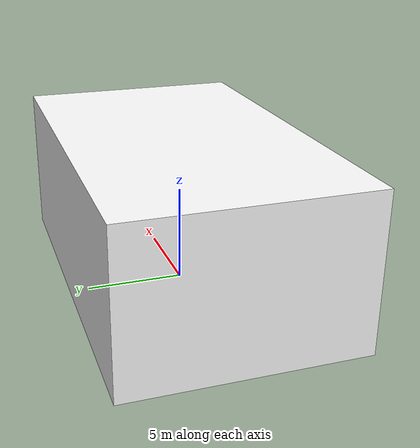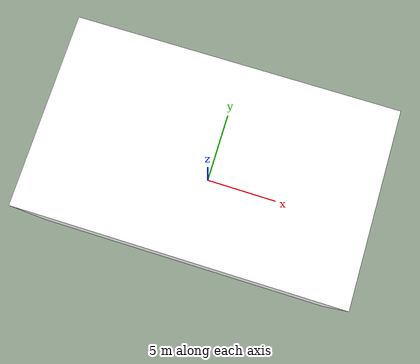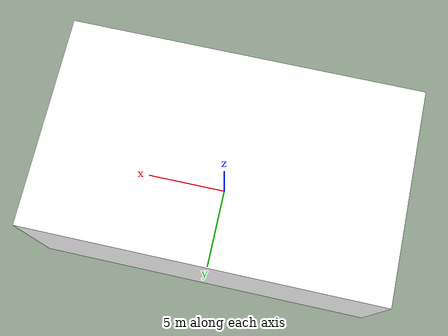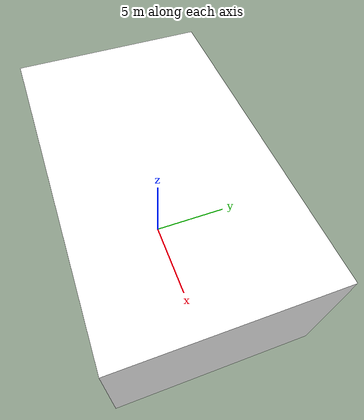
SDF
<?xml version="1.0"?>
<sdf version="1.9">
  <world name="test_environment">
    <scene>
      <ambient>0.5 0.5 0.5</ambient>
      <grid>false</grid>
      <origin_visual>true</origin_visual>
    </scene>

    <physics name="4ms" type="ignored">
        <max_step_size>0.004</max_step_size>
        <real_time_factor>1.0</real_time_factor>
    </physics>

    <include>
      <uri>sdf/test_environment.sdf</uri>
    </include>

    <light name="Light" type="point">
      <pose>1.055 -4.0762 5.9039 0 0 0</pose>
      <diffuse>1 1 1 1</diffuse>
      <specular>1 1 1 1</specular>
      <intensity>1</intensity>
      <attenuation>
        <range>20</range>
        <linear>1</linear>
        <constant>0.35</constant>
        <quadratic>0.05</quadratic>
      </attenuation>
      <cast_shadows>false</cast_shadows>
      <visualize>false</visualize>
    </light>

  </world>
</sdf>

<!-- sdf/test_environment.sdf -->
<sdf version="1.9">
  <model name="Test_environment">

    <link name="Link">

      <visual name="room">
        <cast_shadows>false</cast_shadows>
        <geometry>
          <mesh>
            <uri>file://meshes/test_environment.dae</uri>
            <submesh>
               <name>Cube</name>
               <center>false</center>
            </submesh>
          </mesh>
        </geometry>
        <material>
          <diffuse>1.0 1.0 1.0</diffuse>
          <specular>1.0 1.0 1.0</specular>
          <pbr>
            <metal>
              <albedo_map>file://textures/Cube_Bake1_PBR_Diffuse.png</albedo_map>
              <roughness_map>file://textures/Cube_Bake1_PBR_Roughness.png</roughness_map>
              <metalness_map>file://textures/Cube_Bake1_PBR_Metalness.png</metalness_map>
              <normal_map>file://textures/Cube_Bake1_PBR_Normal.png</normal_map>
              <light_map>file://textures/Cube_Bake1_PBR_Lightmap.png</light_map>
            </metal>
          </pbr>
        </material>
      </visual>

      <visual name="Monkey">
        <cast_shadows>false</cast_shadows>
        <geometry>
          <mesh>
            <uri>file://meshes/test_environment.dae</uri>
            <submesh>
               <name>Suzanne</name>
               <center>false</center>
            </submesh>
          </mesh>
        </geometry>
        <material>
          <diffuse>1.0 1.0 1.0</diffuse>
          <specular>1.0 1.0 1.0</specular>
          <pbr>
            <metal>
              <albedo_map>file://textures/Suzanne_Bake1_PBR_Diffuse.png</albedo_map>
              <roughness_map>file://textures/Suzanne_Bake1_PBR_Roughness.png</roughness_map>
              <metalness_map>file://textures/Suzanne_Bake1_PBR_Metalness.png</metalness_map>
              <normal_map>file://textures/Suzanne_Bake1_PBR_Normal.png</normal_map>
              <light_map>file://textures/Suzanne_Bake1_PBR_Lightmap.png</light_map>
            </metal>
          </pbr>
        </material>
      </visual>

    </link>

  </model>
</sdf>
